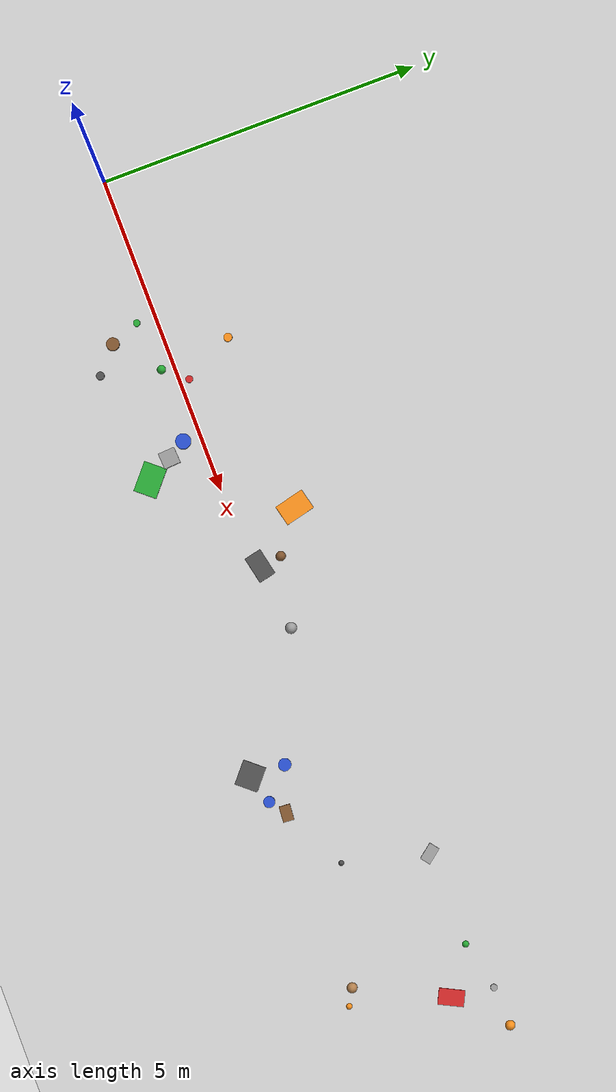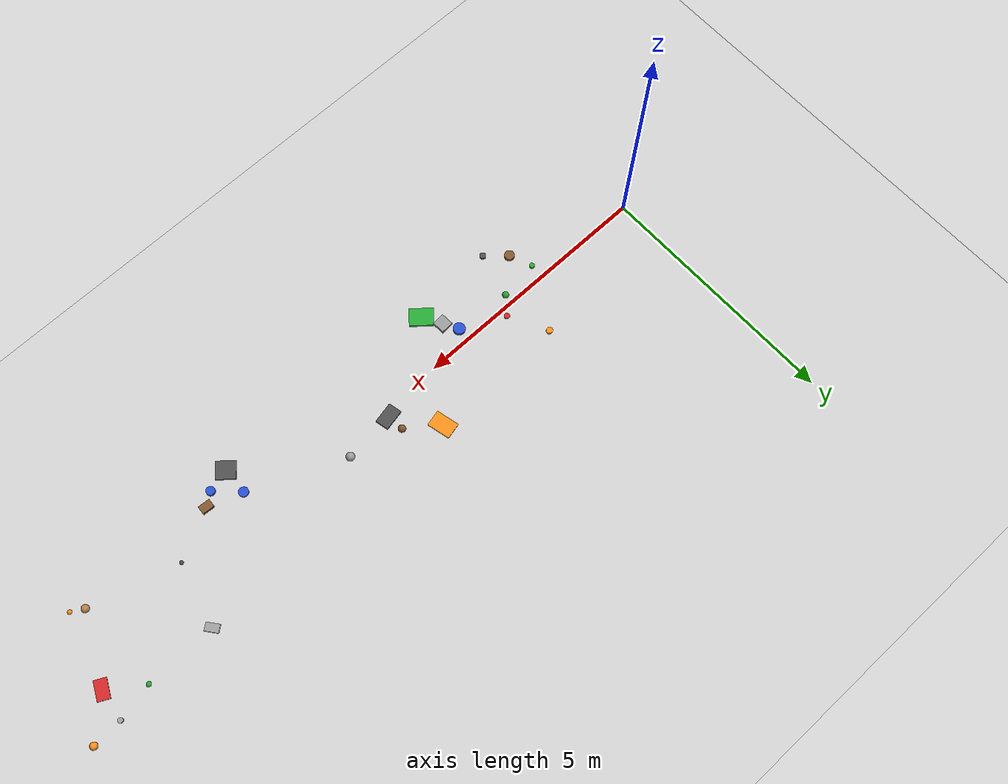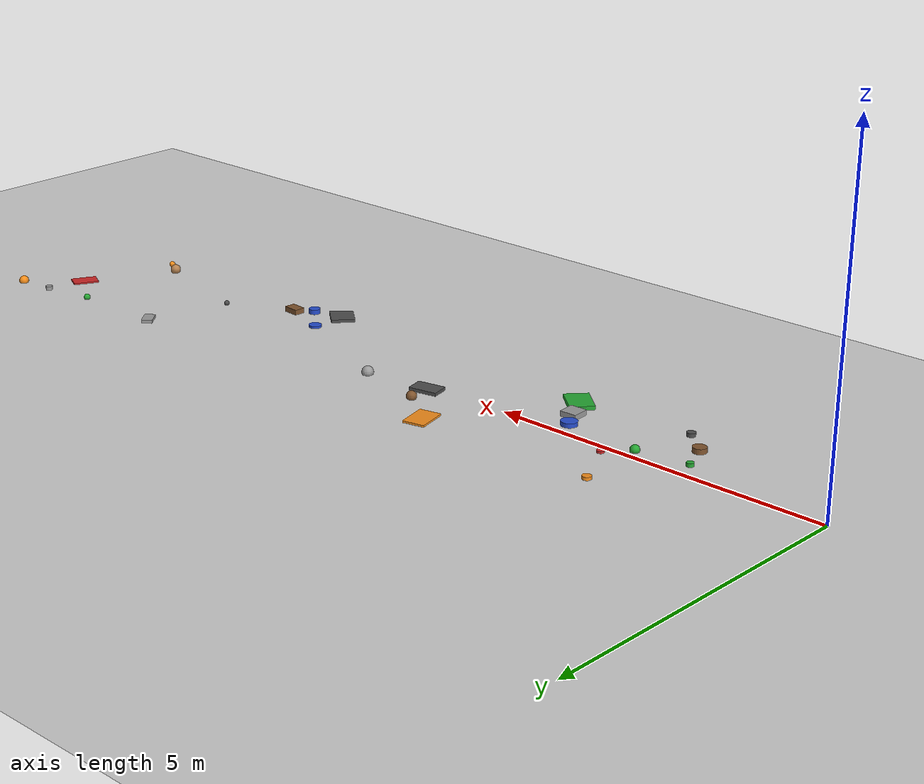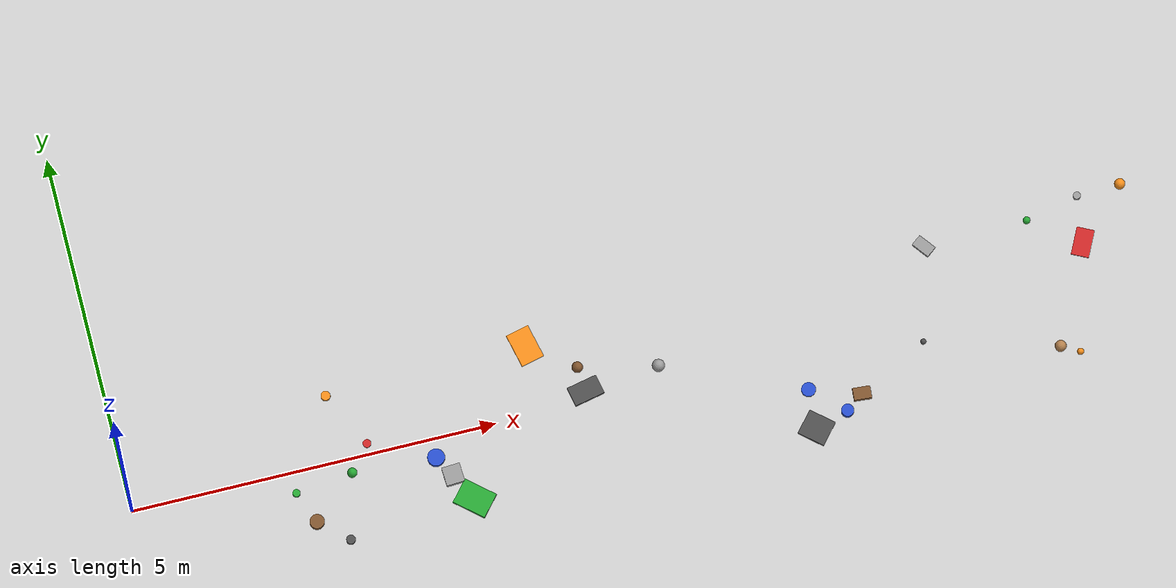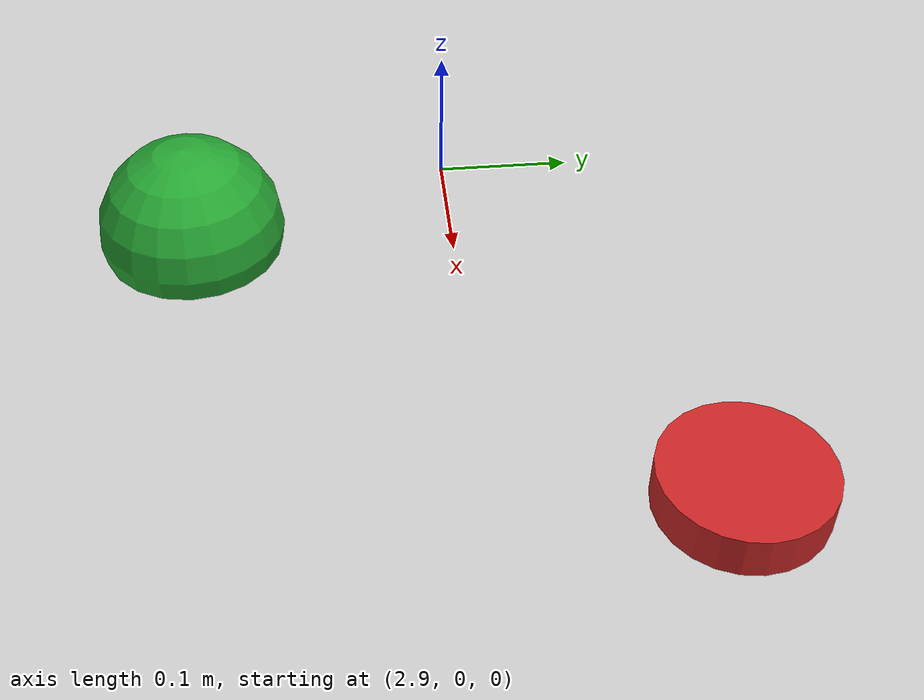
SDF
<?xml version="1.0" ?>
<!-- 由 omni_world.py 自动生成: scene=random seed=9 -->
<sdf version="1.5">
  <world name="random">
    <physics type="ode">
      <type>world</type>
      <max_step_size>0.001</max_step_size>
      <real_time_update_rate>1000</real_time_update_rate>
      <iters>500</iters>
    </physics>
    <include><uri>model://sun</uri></include>
    <include><uri>model://ground_plane</uri></include>
    <model name="r_cyl_0">
      <static>true</static>
      <pose>9.165 -0.559 0.017 0 0 0</pose>
      <link name="link">
        <collision name="collision">
          <geometry><cylinder><radius>0.097</radius><length>0.033</length></cylinder></geometry>
          <surface><friction><ode><mu>1.0</mu><mu2>1.0</mu2></ode></friction></surface>
        </collision>
        <visual name="visual">
          <geometry><cylinder><radius>0.097</radius><length>0.033</length></cylinder></geometry>
          <material><script><uri>file://media/materials/scripts/gazebo.material</uri>
            <name>Gazebo/Blue</name></script></material>
        </visual>
      </link>
    </model>
    <model name="r_sph_1">
      <static>true</static>
      <pose>7.297 0.251 0.022 0 0 0</pose>
      <link name="link">
        <collision name="collision">
          <geometry><sphere><radius>0.087</radius></sphere></geometry>
          <surface><friction><ode><mu>1.0</mu><mu2>1.0</mu2></ode></friction></surface>
        </collision>
        <visual name="visual">
          <geometry><sphere><radius>0.087</radius></sphere></geometry>
          <material><script><uri>file://media/materials/scripts/gazebo.material</uri>
            <name>Gazebo/Grey</name></script></material>
        </visual>
      </link>
    </model>
    <model name="r_sph_2">
      <static>true</static>
      <pose>6.238 0.488 0.026 0 0 0</pose>
      <link name="link">
        <collision name="collision">
          <geometry><sphere><radius>0.076</radius></sphere></geometry>
          <surface><friction><ode><mu>1.0</mu><mu2>1.0</mu2></ode></friction></surface>
        </collision>
        <visual name="visual">
          <geometry><sphere><radius>0.076</radius></sphere></geometry>
          <material><script><uri>file://media/materials/scripts/gazebo.material</uri>
            <name>Gazebo/Brown</name></script></material>
        </visual>
      </link>
    </model>
    <model name="r_box_3">
      <static>true</static>
      <pose>4.475 -0.934 0.028 0.0000 0.0000 2.4323</pose>
      <link name="link">
        <collision name="collision">
          <geometry><box><size>0.473 0.357 0.055</size></box></geometry>
          <surface><friction><ode><mu>1.0</mu><mu2>1.0</mu2></ode></friction></surface>
        </collision>
        <visual name="visual">
          <geometry><box><size>0.473 0.357 0.055</size></box></geometry>
          <material><script><uri>file://media/materials/scripts/gazebo.material</uri>
            <name>Gazebo/Green</name></script></material>
        </visual>
      </link>
    </model>
    <model name="r_sph_4">
      <static>true</static>
      <pose>12.591 1.005 0.017 0 0 0</pose>
      <link name="link">
        <collision name="collision">
          <geometry><sphere><radius>0.051</radius></sphere></geometry>
          <surface><friction><ode><mu>1.0</mu><mu2>1.0</mu2></ode></friction></surface>
        </collision>
        <visual name="visual">
          <geometry><sphere><radius>0.051</radius></sphere></geometry>
          <material><script><uri>file://media/materials/scripts/gazebo.material</uri>
            <name>Gazebo/Green</name></script></material>
        </visual>
      </link>
    </model>
    <model name="r_box_5">
      <static>true</static>
      <pose>11.157 0.987 0.024 0.0000 0.0000 2.2268</pose>
      <link name="link">
        <collision name="collision">
          <geometry><box><size>0.270 0.165 0.048</size></box></geometry>
          <surface><friction><ode><mu>1.0</mu><mu2>1.0</mu2></ode></friction></surface>
        </collision>
        <visual name="visual">
          <geometry><box><size>0.270 0.165 0.048</size></box></geometry>
          <material><script><uri>file://media/materials/scripts/gazebo.material</uri>
            <name>Gazebo/Grey</name></script></material>
        </visual>
      </link>
    </model>
    <model name="r_cyl_6">
      <static>true</static>
      <pose>2.185 -0.291 0.027 0 0 0</pose>
      <link name="link">
        <collision name="collision">
          <geometry><cylinder><radius>0.052</radius><length>0.054</length></cylinder></geometry>
          <surface><friction><ode><mu>1.0</mu><mu2>1.0</mu2></ode></friction></surface>
        </collision>
        <visual name="visual">
          <geometry><cylinder><radius>0.052</radius><length>0.054</length></cylinder></geometry>
          <material><script><uri>file://media/materials/scripts/gazebo.material</uri>
            <name>Gazebo/Green</name></script></material>
        </visual>
      </link>
    </model>
    <model name="r_sph_7">
      <static>true</static>
      <pose>12.830 -0.931 0.031 0 0 0</pose>
      <link name="link">
        <collision name="collision">
          <geometry><sphere><radius>0.046</radius></sphere></geometry>
          <surface><friction><ode><mu>1.0</mu><mu2>1.0</mu2></ode></friction></surface>
        </collision>
        <visual name="visual">
          <geometry><sphere><radius>0.046</radius></sphere></geometry>
          <material><script><uri>file://media/materials/scripts/gazebo.material</uri>
            <name>Gazebo/Orange</name></script></material>
        </visual>
      </link>
    </model>
    <model name="r_box_8">
      <static>true</static>
      <pose>5.628 0.942 0.015 0.0000 0.0000 1.8001</pose>
      <link name="link">
        <collision name="collision">
          <geometry><box><size>0.471 0.325 0.029</size></box></geometry>
          <surface><friction><ode><mu>1.0</mu><mu2>1.0</mu2></ode></friction></surface>
        </collision>
        <visual name="visual">
          <geometry><box><size>0.471 0.325 0.029</size></box></geometry>
          <material><script><uri>file://media/materials/scripts/gazebo.material</uri>
            <name>Gazebo/Orange</name></script></material>
        </visual>
      </link>
    </model>
    <model name="r_cyl_9">
      <static>true</static>
      <pose>2.360 -0.739 0.037 0 0 0</pose>
      <link name="link">
        <collision name="collision">
          <geometry><cylinder><radius>0.099</radius><length>0.074</length></cylinder></geometry>
          <surface><friction><ode><mu>1.0</mu><mu2>1.0</mu2></ode></friction></surface>
        </collision>
        <visual name="visual">
          <geometry><cylinder><radius>0.099</radius><length>0.074</length></cylinder></geometry>
          <material><script><uri>file://media/materials/scripts/gazebo.material</uri>
            <name>Gazebo/Brown</name></script></material>
        </visual>
      </link>
    </model>
    <model name="r_box_10">
      <static>true</static>
      <pose>13.246 0.527 0.011 0.0000 0.0000 2.6766</pose>
      <link name="link">
        <collision name="collision">
          <geometry><box><size>0.244 0.389 0.023</size></box></geometry>
          <surface><friction><ode><mu>1.0</mu><mu2>1.0</mu2></ode></friction></surface>
        </collision>
        <visual name="visual">
          <geometry><box><size>0.244 0.389 0.023</size></box></geometry>
          <material><script><uri>file://media/materials/scripts/gazebo.material</uri>
            <name>Gazebo/Red</name></script></material>
        </visual>
      </link>
    </model>
    <model name="r_sph_11">
      <static>true</static>
      <pose>13.936 1.195 0.014 0 0 0</pose>
      <link name="link">
        <collision name="collision">
          <geometry><sphere><radius>0.075</radius></sphere></geometry>
          <surface><friction><ode><mu>1.0</mu><mu2>1.0</mu2></ode></friction></surface>
        </collision>
        <visual name="visual">
          <geometry><sphere><radius>0.075</radius></sphere></geometry>
          <material><script><uri>file://media/materials/scripts/gazebo.material</uri>
            <name>Gazebo/Orange</name></script></material>
        </visual>
      </link>
    </model>
    <model name="r_box_12">
      <static>true</static>
      <pose>9.139 -1.097 0.023 0.0000 0.0000 2.4336</pose>
      <link name="link">
        <collision name="collision">
          <geometry><box><size>0.386 0.357 0.046</size></box></geometry>
          <surface><friction><ode><mu>1.0</mu><mu2>1.0</mu2></ode></friction></surface>
        </collision>
        <visual name="visual">
          <geometry><box><size>0.386 0.357 0.046</size></box></geometry>
          <material><script><uri>file://media/materials/scripts/gazebo.material</uri>
            <name>Gazebo/DarkGrey</name></script></material>
        </visual>
      </link>
    </model>
    <model name="r_cyl_13">
      <static>true</static>
      <pose>2.875 0.916 0.023 0 0 0</pose>
      <link name="link">
        <collision name="collision">
          <geometry><cylinder><radius>0.065</radius><length>0.046</length></cylinder></geometry>
          <surface><friction><ode><mu>1.0</mu><mu2>1.0</mu2></ode></friction></surface>
        </collision>
        <visual name="visual">
          <geometry><cylinder><radius>0.065</radius><length>0.046</length></cylinder></geometry>
          <material><script><uri>file://media/materials/scripts/gazebo.material</uri>
            <name>Gazebo/Orange</name></script></material>
        </visual>
      </link>
    </model>
    <model name="r_sph_14">
      <static>true</static>
      <pose>10.821 -0.291 0.031 0 0 0</pose>
      <link name="link">
        <collision name="collision">
          <geometry><sphere><radius>0.040</radius></sphere></geometry>
          <surface><friction><ode><mu>1.0</mu><mu2>1.0</mu2></ode></friction></surface>
        </collision>
        <visual name="visual">
          <geometry><sphere><radius>0.040</radius></sphere></geometry>
          <material><script><uri>file://media/materials/scripts/gazebo.material</uri>
            <name>Gazebo/DarkGrey</name></script></material>
        </visual>
      </link>
    </model>
    <model name="r_box_15">
      <static>true</static>
      <pose>4.271 -0.553 0.039 0.0000 0.0000 1.6258</pose>
      <link name="link">
        <collision name="collision">
          <geometry><box><size>0.258 0.250 0.077</size></box></geometry>
          <surface><friction><ode><mu>1.0</mu><mu2>1.0</mu2></ode></friction></surface>
        </collision>
        <visual name="visual">
          <geometry><box><size>0.258 0.250 0.077</size></box></geometry>
          <material><script><uri>file://media/materials/scripts/gazebo.material</uri>
            <name>Gazebo/Grey</name></script></material>
        </visual>
      </link>
    </model>
    <model name="r_box_16">
      <static>true</static>
      <pose>6.267 0.145 0.025 0.0000 0.0000 1.7782</pose>
      <link name="link">
        <collision name="collision">
          <geometry><box><size>0.271 0.422 0.050</size></box></geometry>
          <surface><friction><ode><mu>1.0</mu><mu2>1.0</mu2></ode></friction></surface>
        </collision>
        <visual name="visual">
          <geometry><box><size>0.271 0.422 0.050</size></box></geometry>
          <material><script><uri>file://media/materials/scripts/gazebo.material</uri>
            <name>Gazebo/DarkGrey</name></script></material>
        </visual>
      </link>
    </model>
    <model name="r_cyl_17">
      <static>true</static>
      <pose>9.598 -0.970 0.037 0 0 0</pose>
      <link name="link">
        <collision name="collision">
          <geometry><cylinder><radius>0.086</radius><length>0.073</length></cylinder></geometry>
          <surface><friction><ode><mu>1.0</mu><mu2>1.0</mu2></ode></friction></surface>
        </collision>
        <visual name="visual">
          <geometry><cylinder><radius>0.086</radius><length>0.073</length></cylinder></geometry>
          <material><script><uri>file://media/materials/scripts/gazebo.material</uri>
            <name>Gazebo/Blue</name></script></material>
        </visual>
      </link>
    </model>
    <model name="r_box_18">
      <static>true</static>
      <pose>9.844 -0.789 0.040 0.0000 0.0000 3.0639</pose>
      <link name="link">
        <collision name="collision">
          <geometry><box><size>0.241 0.168 0.079</size></box></geometry>
          <surface><friction><ode><mu>1.0</mu><mu2>1.0</mu2></ode></friction></surface>
        </collision>
        <visual name="visual">
          <geometry><box><size>0.241 0.168 0.079</size></box></geometry>
          <material><script><uri>file://media/materials/scripts/gazebo.material</uri>
            <name>Gazebo/Brown</name></script></material>
        </visual>
      </link>
    </model>
    <model name="r_cyl_19">
      <static>true</static>
      <pose>13.331 1.167 0.031 0 0 0</pose>
      <link name="link">
        <collision name="collision">
          <geometry><cylinder><radius>0.051</radius><length>0.062</length></cylinder></geometry>
          <surface><friction><ode><mu>1.0</mu><mu2>1.0</mu2></ode></friction></surface>
        </collision>
        <visual name="visual">
          <geometry><cylinder><radius>0.051</radius><length>0.062</length></cylinder></geometry>
          <material><script><uri>file://media/materials/scripts/gazebo.material</uri>
            <name>Gazebo/Grey</name></script></material>
        </visual>
      </link>
    </model>
    <model name="r_cyl_20">
      <static>true</static>
      <pose>4.108 -0.267 0.031 0 0 0</pose>
      <link name="link">
        <collision name="collision">
          <geometry><cylinder><radius>0.118</radius><length>0.063</length></cylinder></geometry>
          <surface><friction><ode><mu>1.0</mu><mu2>1.0</mu2></ode></friction></surface>
        </collision>
        <visual name="visual">
          <geometry><cylinder><radius>0.118</radius><length>0.063</length></cylinder></geometry>
          <material><script><uri>file://media/materials/scripts/gazebo.material</uri>
            <name>Gazebo/Blue</name></script></material>
        </visual>
      </link>
    </model>
    <model name="r_cyl_21">
      <static>true</static>
      <pose>3.258 0.149 0.015 0 0 0</pose>
      <link name="link">
        <collision name="collision">
          <geometry><cylinder><radius>0.056</radius><length>0.030</length></cylinder></geometry>
          <surface><friction><ode><mu>1.0</mu><mu2>1.0</mu2></ode></friction></surface>
        </collision>
        <visual name="visual">
          <geometry><cylinder><radius>0.056</radius><length>0.030</length></cylinder></geometry>
          <material><script><uri>file://media/materials/scripts/gazebo.material</uri>
            <name>Gazebo/Red</name></script></material>
        </visual>
      </link>
    </model>
    <model name="r_sph_22">
      <static>true</static>
      <pose>2.974 -0.192 0.015 0 0 0</pose>
      <link name="link">
        <collision name="collision">
          <geometry><sphere><radius>0.068</radius></sphere></geometry>
          <surface><friction><ode><mu>1.0</mu><mu2>1.0</mu2></ode></friction></surface>
        </collision>
        <visual name="visual">
          <geometry><sphere><radius>0.068</radius></sphere></geometry>
          <material><script><uri>file://media/materials/scripts/gazebo.material</uri>
            <name>Gazebo/Green</name></script></material>
        </visual>
      </link>
    </model>
    <model name="r_sph_23">
      <static>true</static>
      <pose>12.590 -0.794 0.035 0 0 0</pose>
      <link name="link">
        <collision name="collision">
          <geometry><sphere><radius>0.079</radius></sphere></geometry>
          <surface><friction><ode><mu>1.0</mu><mu2>1.0</mu2></ode></friction></surface>
        </collision>
        <visual name="visual">
          <geometry><sphere><radius>0.079</radius></sphere></geometry>
          <material><script><uri>file://media/materials/scripts/gazebo.material</uri>
            <name>Gazebo/Wood</name></script></material>
        </visual>
      </link>
    </model>
    <model name="r_cyl_24">
      <static>true</static>
      <pose>2.740 -1.084 0.029 0 0 0</pose>
      <link name="link">
        <collision name="collision">
          <geometry><cylinder><radius>0.062</radius><length>0.057</length></cylinder></geometry>
          <surface><friction><ode><mu>1.0</mu><mu2>1.0</mu2></ode></friction></surface>
        </collision>
        <visual name="visual">
          <geometry><cylinder><radius>0.062</radius><length>0.057</length></cylinder></geometry>
          <material><script><uri>file://media/materials/scripts/gazebo.material</uri>
            <name>Gazebo/DarkGrey</name></script></material>
        </visual>
      </link>
    </model>

  </world>
</sdf>
